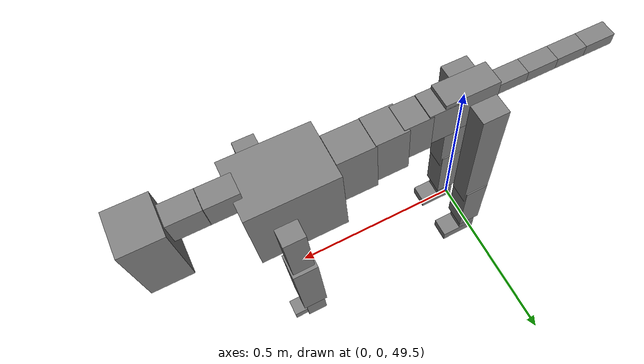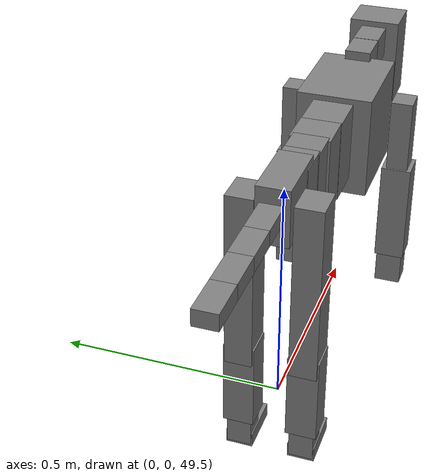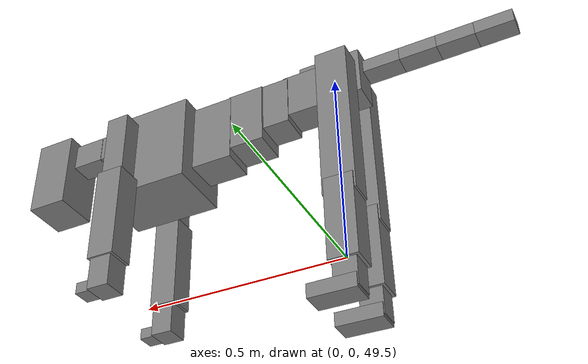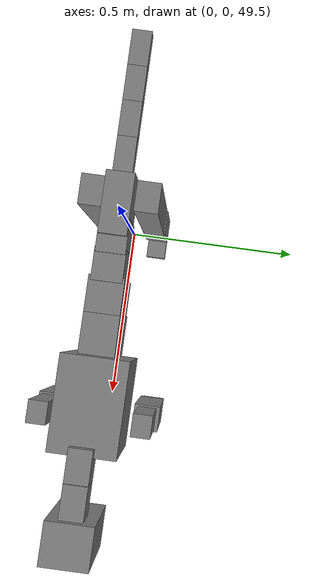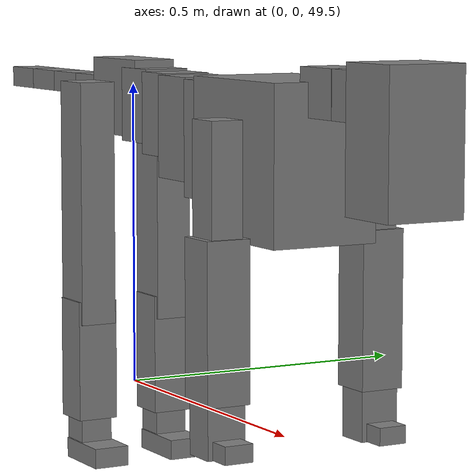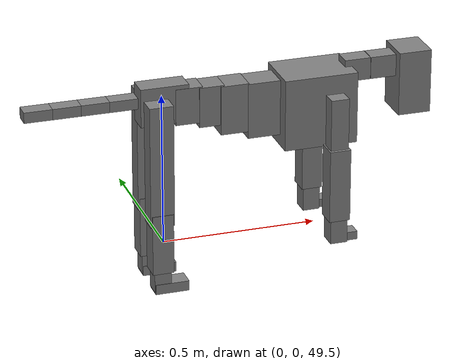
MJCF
<mujoco model="dog">

    <default>
        <joint armature="0.02" stiffness="1" damping="0.2" limited="true"/>
        <geom condim="3" friction="1 0.05 0.05" margin="0.01"/>
        <motor ctrllimited="true" ctrlrange="-1.0 1.0" forcelimited="true" gear="50"/>
    </default>

    <compiler inertiafromgeom="true" angle="radian"/>

    <option timestep="0.016" iterations="50" tolerance="1e-10" solver="Newton" jacobian="dense" cone="pyramidal"/>

    <size nconmax="20000" njmax="60000" nstack="5000000"/>
    <visual>
        <map force="0.1" zfar="30"/>
        <rgba haze="0.15 0.25 0.35 1"/>
        <quality shadowsize="2048"/>
        <global offwidth="800" offheight="800"/>
    </visual>

    <asset>
        <texture type="skybox" builtin="gradient" rgb1="0.3 0.5 0.7" rgb2="0 0 0" width="512" height="512"/>
        <texture name="texplane" type="2d" builtin="checker" rgb1=".2 .3 .4" rgb2=".1 0.15 0.2" width="512" height="512"
                 mark="cross" markrgb=".8 .8 .8"/>
        <texture name="texgeom" type="cube" builtin="flat" mark="cross" width="127" height="1278" rgb1="0.8 0.6 0.4"
                 rgb2="0.8 0.6 0.4" markrgb="1 1 1" random="0.01"/>

        <material name="matplane" reflectance="0.3" texture="texplane" texrepeat="1 1" texuniform="true"/>
        <material name="matgeom" texture="texgeom" texuniform="true" rgba="0.8 0.6 .4 1"/>
    </asset>

    <worldbody>
        <geom name="floor" pos="0 0 0" size="0 0 .25" type="plane" material="matplane" condim="3"/>

        <light directional="false" diffuse=".2 .2 .2" specular="0 0 0" pos="0 0 5" dir="0 0 -1" castshadow="false"/>
        <light mode="targetbodycom" target="torso" directional="false" diffuse=".8 .8 .8" specular="0.3 0.3 0.3"
               pos="0 0 4.0" dir="0 0 -1"/>

        <body name="root" pos="0 0 50">
            <freejoint name="root_1"/>
            <geom type="box" pos="0 0 -0.02" size="0.0774  0.0358  0.063" density="2030"/>

            <body name="spine1" pos="0.054 0 0">
                <joint name="spine1_y" axis="0 1 0" range="0 0.7" limited="true"/>
                <geom type="box" pos="0.02375 0 -0.03" size="0.04375  0.0375  0.05985" density="2030"/>

                <body name="spine2" pos="0.0612 0 0">
                    <joint name="spine2_y" axis="0 1 0" range="-0.15 0.15" limited="true"/>
                    <geom type="box" pos="0.03555  0  -0.04" size="0.04055  0.039  0.06615" density="2030"/>

                    <body name="spine3" pos="0.0730 0 0">
                        <joint name="spine3_y" axis="0 1 0" range="-0.15 0.15" limited="true"/>
                        <geom type="box" pos="0.03555  0  -0.057" size="0.04555  0.0445  0.081" density="2030"/>

                        <body name="spine4" pos="0.0780 0 0">
                            <joint name="spine4_y" axis="0 1 0" range="-0.15 0.15" limited="true"/>
                            <geom type="box" pos="0.05265  0  -0.07" size="0.05265  0.045  0.09135" density="2030"/>

                            <body name="torso" pos="0.1082 0 0">
                                <joint name="torso_y" axis="0 1 0" range="-0.15 0.15" limited="true"/>
                                <geom type="box" pos="0.11925  0  -0.085" size="0.11925  0.085  0.11745"
                                      density="2030"/>

                                <body name="neck1" pos="0.2160  0   0.0180">
                                    <joint name="neck1_y" axis="0 1 0" range="-1.2  -1" limited="true"/>
                                    <geom type="box" pos="0.0423  0  0" size="0.0423  0.03  0.036" density="2325"/>

                                    <body name="neck2" pos="0.0853  0  0">
                                        <joint name="neck2_y" axis="0 1 0" range="0.1  0" limited="true"/>
                                        <geom type="box" pos="0.0423  0  0" size="0.0423  0.03  0.036" density="2325"/>

                                        <body name="head" pos="0.0853  0  0">
                                            <joint name="head_y" axis="0 1 0" range="-0.3  -0.2" limited="true"/>
                                            <geom type="box" pos="0.0531  0  -0.055" size="0.0531  0.06  0.1044"
                                                  density="4030"/>

                                        </body>
                                    </body>
                                </body>

                                <body name="front_shoulder" pos="0.156  0   -0.0480">
                                    <joint name="front_shoulder_y" axis="0 1 0" range="-1 1.5" limited="true"/>
                                    <geom type="box" pos="0 0.13 -0.0713" size="0.0291  0.0249  0.0979" density="1158"/>
                                    <geom type="box" pos="0 -0.13 -0.0713" size="0.0291  0.0249  0.0979"
                                          density="1158"/>

                                    <body name="front_elbow" pos="0  0  -0.1426">
                                        <joint name="front_elbow_y" axis="0 1 0" range="-2 0" limited="true"/>
                                        <geom type="box" pos="0 0.13 -0.1200" size="0.0340  0.0347  0.1200"
                                              density="1081"/>
                                        <geom type="box" pos="0 -0.13 -0.1200" size="0.0340  0.0347  0.1200"
                                              density="1081"/>

                                        <body name="front_wrist" pos="0  0  -0.2401">
                                            <joint name="front_wrist_y" axis="0 1 0" range="-0.2 0" limited="true"/>
                                            <geom type="box" pos="0 0.13 -0.0323" size="0.0275  0.0305  0.0455"
                                                  density="1664"/>
                                            <geom type="box" pos="0 -0.13 -0.0323" size="0.0275  0.0305  0.0455"
                                                  density="1664"/>

                                            <body name="front_finger_end" pos="0  0  -0.0647">
                                                <joint name="front_finger_y" axis="0 1 0" range="-0.4 1"
                                                       limited="true"/>
                                                <geom type="box" pos="0.0227  0.13  0.0014"
                                                      size="0.0416  0.0227  0.0136" density="1515"/>
                                                <geom type="box" pos="0.0227  -0.13  0.0014"
                                                      size="0.0416  0.0227  0.0136" density="1515"/>

                                            </body>

                                        </body>
                                    </body>
                                </body>

                            </body>
                        </body>
                    </body>
                </body>
            </body>

            <body name="back_hip" pos="-0.03 0 -0.018">
                <joint name="back_hip_y" axis="0 1 0" range="-1.5 0.3" limited="true"/>
                <geom type="box" pos="0 0.07 -0.1782" size="0.0387  0.0304  0.2010" density="1154"/>
                <geom type="box" pos="0 -0.07 -0.1782" size="0.0387  0.0304  0.2010" density="1154"/>

                <body name="back_knee" pos="0  0  -0.3563">
                    <joint name="back_knee_y" axis="0 1 0" range="0 2.8" limited="true"/>
                    <geom type="box" pos="0 0.07 -0.0842" size="0.0344  0.0339  0.0998" density="1227"/>
                    <geom type="box" pos="0 -0.07 -0.0842" size="0.0344  0.0339  0.0998" density="1227"/>

                    <body name="back_ankle" pos="0  0  -0.1684">
                        <joint name="back_ankle_y" axis="0 1 0" range="-2.2 0" limited="true"/>
                        <geom type="box" pos="0 0.07 -0.0347" size="0.0271  0.0271  0.0459" density="1284"/>
                        <geom type="box" pos="0 -0.07 -0.0347" size="0.0271  0.0271  0.0459" density="1284"/>

                        <body name="back_toe_end" pos="0  0  -0.0693">
                            <joint name="back_toe_y" axis="0 1 0" range="-0.4 1" limited="true"/>
                            <geom type="box" pos="0.0298  0.07  -0.0015" size="0.0546  0.0298  0.0165" density="1515"/>
                            <geom type="box" pos="0.0298  -0.07  -0.0015" size="0.0546  0.0298  0.0165" density="1515"/>

                        </body>
                    </body>
                </body>
            </body>

            <body name="tail1" pos="-0.074 0 -0.006">
                <joint name="tail1_y" axis="0 1 0" range="-0.2 0.2" limited="true"/>
                <geom type="box" pos="-0.0536  0  0" size="0.045  0.025  0.0175" density="1587"/>

                <body name="tail2" pos="-0.09 0 0">
                    <joint name="tail2_y" axis="0 1 0" range="-0.2 0.2" limited="true"/>
                    <geom type="box" pos="-0.0536  0  0" size="0.045  0.025  0.0175" density="1587"/>

                    <body name="tail3" pos="-0.09 0 0">
                        <joint name="tail3_y" axis="0 1 0" range="-0.2 0.2" limited="true"/>
                        <geom type="box" pos="-0.0536  0  0" size="0.045  0.025  0.0175" density="1587"/>

                        <body name="tail4" pos="-0.09 0 0">
                            <joint name="tail4_y" axis="0 1 0" range="-0.2 0.2" limited="true"/>
                            <geom type="box" pos="-0.0536  0  0" size="0.045  0.025  0.0175" density="1587"/>

                        </body>
                    </body>
                </body>
            </body>
        </body>
    </worldbody>

    <actuator>
        <motor joint="spine1_y" forcerange="-150 150     "/>
        <motor joint="spine2_y" forcerange="-150 150     "/>
        <motor joint="spine3_y" forcerange="-150 150     "/>
        <motor joint="spine4_y" forcerange="-150 150     "/>
        <motor joint="torso_y" forcerange="-150 150     "/>
        <motor joint="neck1_y" forcerange="-100 100       "/>
        <motor joint="neck2_y" forcerange="-100 100       "/>
        <motor joint="head_y" forcerange="-150 150       "/>
        <motor joint="front_shoulder_y" forcerange="-154.65 111.40"/>
        <motor joint="front_elbow_y" forcerange="-188.61 163.91"/>
        <motor joint="front_wrist_y" forcerange="-143.28 100.95"/>
        <motor joint="front_finger_y" forcerange="-21.02 60.11"/>
        <motor joint="back_hip_y" forcerange="-206.51 398.50"/>
        <motor joint="back_knee_y" forcerange="-298.81 394.34"/>
        <motor joint="back_angle_y" forcerange="-101.05 233.09"/>
        <motor joint="back_toe_y" forcerange="-68.35 89.86"/>
        <motor joint="tail1_y" forcerange="-50 50     "/>
        <motor joint="tail2_y" forcerange="-50 50     "/>
        <motor joint="tail3_y" forcerange="-50 50     "/>
        <motor joint="tail4_y" forcerange="-50 50     "/>
    </actuator>
</mujoco>
